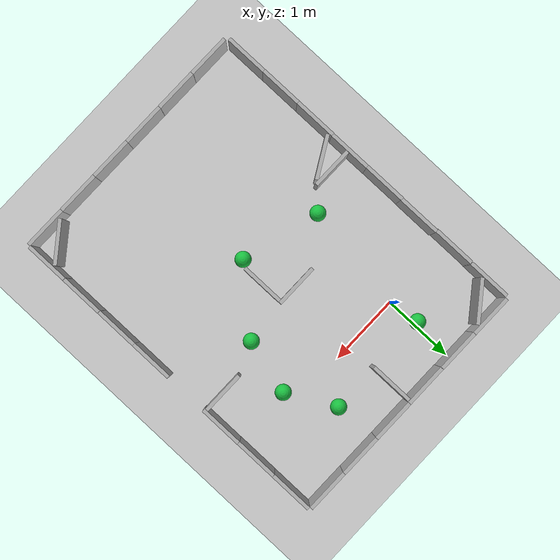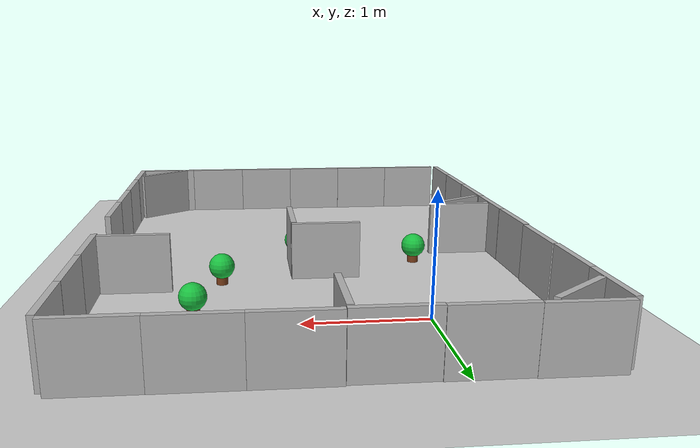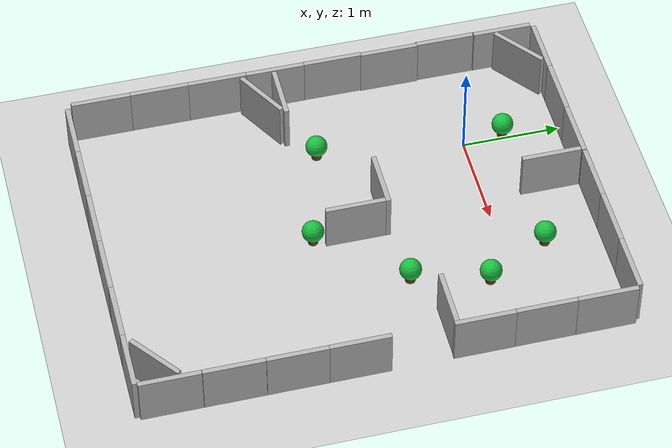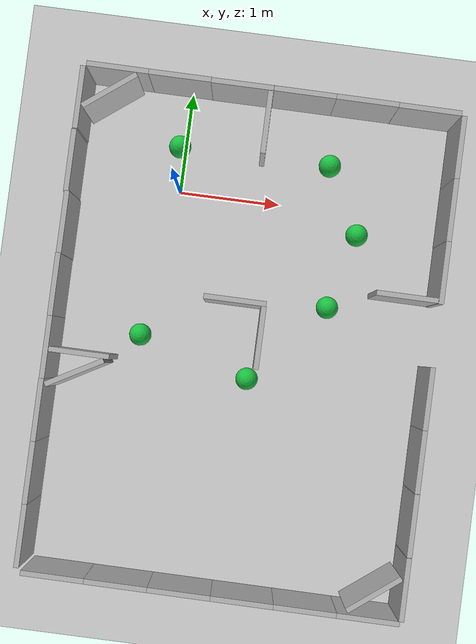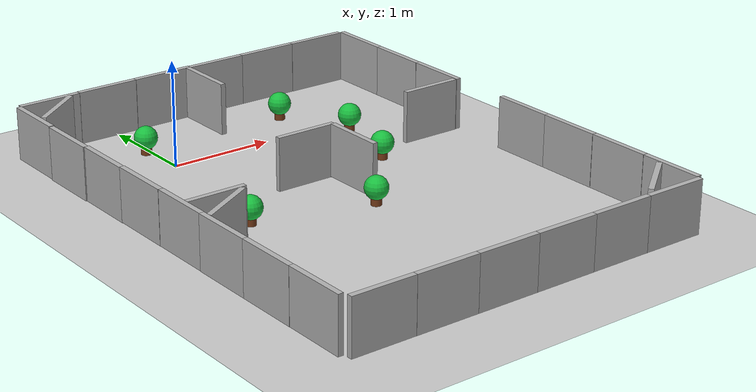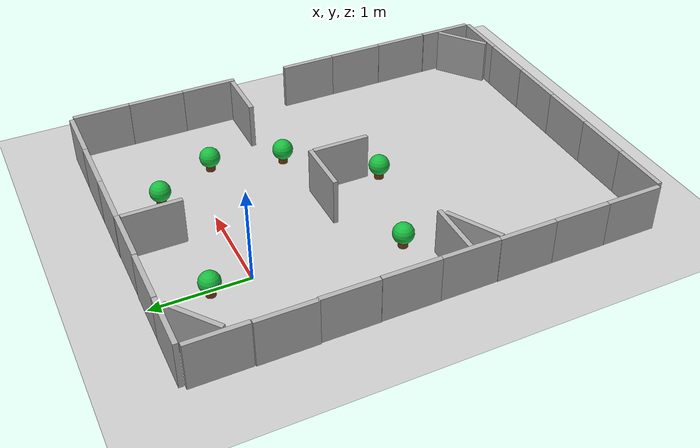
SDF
<sdf version="1.8">
 <world name="default">
  <model name="ground_plane">
   <static>true</static>
   <link name="link">
    <collision name="collision">
     <geometry><plane><normal>0 0 1</normal><size>100 100</size></plane></geometry>
    </collision>
    <visual name="visual">
     <geometry><plane><normal>0 0 1</normal><size>100 100</size></plane></geometry>
     <material>
      <ambient>0.800000012 0.800000012 0.800000012 1</ambient>
      <diffuse>0.800000012 0.800000012 0.800000012 1</diffuse>
      <specular>0.800000012 0.800000012 0.800000012 1</specular>
     </material>
    </visual>
    <inertial>
     <mass>1</mass>
     <inertia><ixx>1</ixx><ixy>0</ixy><ixz>0</ixz><iyy>1</iyy><iyz>0</iyz><izz>1</izz></inertia>
    </inertial>
   </link>
  </model>
  <model name="box">
   <pose>-1.0242099761962891 0.67777901887893677 0.26292604207992554 0 0 0</pose>
   <link name="box_link">
    <inertial>
     <inertia><ixx>0.16666</ixx><ixy>0</ixy><ixz>0</ixz><iyy>0.16666</iyy><iyz>0</iyz><izz>0.16666</izz></inertia>
     <mass>1</mass>
    </inertial>
    <collision name="box_collision">
     <geometry><box><size>0.050000000000000003 0.55 0.5</size></box></geometry>
    </collision>
    <visual name="box_visual">
     <geometry><box><size>0.050000000000000003 0.59999999999999998 0.5</size></box></geometry>
     <material>
      <ambient>0.300000012 0.300000012 0.300000012 1</ambient>
      <diffuse>0.699999988 0.699999988 0.699999988 1</diffuse>
      <specular>1 1 1 1</specular>
     </material>
    </visual>
   </link>
   <static>true</static>
  </model>
  <model name="box_1">
   <pose>-1.03 0.070000000000000007 0.26000000000000001 0 0 0</pose>
   <link name="box_link">
    <inertial>
     <inertia><ixx>0.16666</ixx><ixy>0</ixy><ixz>0</ixz><iyy>0.16666</iyy><iyz>0</iyz><izz>0.16666</izz></inertia>
     <mass>1</mass>
    </inertial>
    <collision name="box_collision">
     <geometry><box><size>0.050000000000000003 0.55 0.5</size></box></geometry>
    </collision>
    <visual name="box_visual">
     <geometry><box><size>0.050000000000000003 0.59999999999999998 0.5</size></box></geometry>
     <material>
      <ambient>0.300000012 0.300000012 0.300000012 1</ambient>
      <diffuse>0.699999988 0.699999988 0.699999988 1</diffuse>
      <specular>1 1 1 1</specular>
     </material>
    </visual>
   </link>
   <static>true</static>
  </model>
  <model name="box_2">
   <pose>-1.02 -0.52000000000000002 0.26000000000000001 0 0 0</pose>
   <link name="box_link">
    <inertial>
     <inertia><ixx>0.16666</ixx><ixy>0</ixy><ixz>0</ixz><iyy>0.16666</iyy><iyz>0</iyz><izz>0.16666</izz></inertia>
     <mass>1</mass>
    </inertial>
    <collision name="box_collision">
     <geometry><box><size>0.050000000000000003 0.55 0.5</size></box></geometry>
    </collision>
    <visual name="box_visual">
     <geometry><box><size>0.050000000000000003 0.59999999999999998 0.5</size></box></geometry>
     <material>
      <ambient>0.300000012 0.300000012 0.300000012 1</ambient>
      <diffuse>0.699999988 0.699999988 0.699999988 1</diffuse>
      <specular>1 1 1 1</specular>
     </material>
    </visual>
   </link>
   <static>true</static>
  </model>
  <model name="box_3">
   <pose>-1.0226199626922607 -1.1138999462127686 0.26708531379699707 0 0 0</pose>
   <link name="box_link">
    <inertial>
     <inertia><ixx>0.16666</ixx><ixy>0</ixy><ixz>0</ixz><iyy>0.16666</iyy><iyz>0</iyz><izz>0.16666</izz></inertia>
     <mass>1</mass>
    </inertial>
    <collision name="box_collision">
     <geometry><box><size>0.050000000000000003 0.55 0.5</size></box></geometry>
    </collision>
    <visual name="box_visual">
     <geometry><box><size>0.050000000000000003 0.59999999999999998 0.5</size></box></geometry>
     <material>
      <ambient>0.300000012 0.300000012 0.300000012 1</ambient>
      <diffuse>0.699999988 0.699999988 0.699999988 1</diffuse>
      <specular>1 1 1 1</specular>
     </material>
    </visual>
   </link>
   <static>true</static>
  </model>
  <model name="box_4">
   <pose>-1.0205800533294678 -1.7115800380706787 0.26702764630317688 0 0 0</pose>
   <link name="box_link">
    <inertial>
     <inertia><ixx>0.16666</ixx><ixy>0</ixy><ixz>0</ixz><iyy>0.16666</iyy><iyz>0</iyz><izz>0.16666</izz></inertia>
     <mass>1</mass>
    </inertial>
    <collision name="box_collision">
     <geometry><box><size>0.050000000000000003 0.55 0.5</size></box></geometry>
    </collision>
    <visual name="box_visual">
     <geometry><box><size>0.050000000000000003 0.59999999999999998 0.5</size></box></geometry>
     <material>
      <ambient>0.300000012 0.300000012 0.300000012 1</ambient>
      <diffuse>0.699999988 0.699999988 0.699999988 1</diffuse>
      <specular>1 1 1 1</specular>
     </material>
    </visual>
   </link>
   <static>true</static>
  </model>
  <model name="box_5">
   <pose>-1.023419976234436 -2.3114299774169922 0.26691371202468872 0 0 0</pose>
   <link name="box_link">
    <inertial>
     <inertia><ixx>0.16666</ixx><ixy>0</ixy><ixz>0</ixz><iyy>0.16666</iyy><iyz>0</iyz><izz>0.16666</izz></inertia>
     <mass>1</mass>
    </inertial>
    <collision name="box_collision">
     <geometry><box><size>0.050000000000000003 0.55 0.5</size></box></geometry>
    </collision>
    <visual name="box_visual">
     <geometry><box><size>0.050000000000000003 0.59999999999999998 0.5</size></box></geometry>
     <material>
      <ambient>0.300000012 0.300000012 0.300000012 1</ambient>
      <diffuse>0.699999988 0.699999988 0.699999988 1</diffuse>
      <specular>1 1 1 1</specular>
     </material>
    </visual>
   </link>
   <static>true</static>
  </model>
  <model name="box_6">
   <pose>-1.0233800411224365 -2.9101500511169434 0.26712024211883545 0 0 0</pose>
   <link name="box_link">
    <inertial>
     <inertia><ixx>0.16666</ixx><ixy>0</ixy><ixz>0</ixz><iyy>0.16666</iyy><iyz>0</iyz><izz>0.16666</izz></inertia>
     <mass>1</mass>
    </inertial>
    <collision name="box_collision">
     <geometry><box><size>0.050000000000000003 0.55 0.5</size></box></geometry>
    </collision>
    <visual name="box_visual">
     <geometry><box><size>0.050000000000000003 0.59999999999999998 0.5</size></box></geometry>
     <material>
      <ambient>0.300000012 0.300000012 0.300000012 1</ambient>
      <diffuse>0.699999988 0.699999988 0.699999988 1</diffuse>
      <specular>1 1 1 1</specular>
     </material>
    </visual>
   </link>
   <static>true</static>
  </model>
  <model name="box_7">
   <pose>-1.0221500396728516 -3.5036098957061768 0.26729947328567505 0 0 0</pose>
   <link name="box_link">
    <inertial>
     <inertia><ixx>0.16666</ixx><ixy>0</ixy><ixz>0</ixz><iyy>0.16666</iyy><iyz>0</iyz><izz>0.16666</izz></inertia>
     <mass>1</mass>
    </inertial>
    <collision name="box_collision">
     <geometry><box><size>0.050000000000000003 0.55 0.5</size></box></geometry>
    </collision>
    <visual name="box_visual">
     <geometry><box><size>0.050000000000000003 0.59999999999999998 0.5</size></box></geometry>
     <material>
      <ambient>0.300000012 0.300000012 0.300000012 1</ambient>
      <diffuse>0.699999988 0.699999988 0.699999988 1</diffuse>
      <specular>1 1 1 1</specular>
     </material>
    </visual>
   </link>
   <static>true</static>
  </model>
  <model name="box_8">
   <pose>-0.69749999046325684 1.0066399574279787 0.25750440359115601 0 0 1.5658000872875657</pose>
   <link name="box_link">
    <inertial>
     <inertia><ixx>0.16666</ixx><ixy>0</ixy><ixz>0</ixz><iyy>0.16666</iyy><iyz>0</iyz><izz>0.16666</izz></inertia>
     <mass>1</mass>
    </inertial>
    <collision name="box_collision">
     <geometry><box><size>0.050000000000000003 0.55 0.5</size></box></geometry>
    </collision>
    <visual name="box_visual">
     <geometry><box><size>0.050000000000000003 0.59999999999999998 0.5</size></box></geometry>
     <material>
      <ambient>0.300000012 0.300000012 0.300000012 1</ambient>
      <diffuse>0.699999988 0.699999988 0.699999988 1</diffuse>
      <specular>1 1 1 1</specular>
     </material>
    </visual>
   </link>
   <static>true</static>
  </model>
  <model name="box_8_1">
   <pose>-0.10089799761772156 1.0029499530792234 0.26086625456809998 0 0 1.56841005300998</pose>
   <link name="box_link">
    <inertial>
     <inertia><ixx>0.16666</ixx><ixy>0</ixy><ixz>0</ixz><iyy>0.16666</iyy><iyz>0</iyz><izz>0.16666</izz></inertia>
     <mass>1</mass>
    </inertial>
    <collision name="box_collision">
     <geometry><box><size>0.050000000000000003 0.55 0.5</size></box></geometry>
    </collision>
    <visual name="box_visual">
     <geometry><box><size>0.050000000000000003 0.59999999999999998 0.5</size></box></geometry>
     <material>
      <ambient>0.300000012 0.300000012 0.300000012 1</ambient>
      <diffuse>0.699999988 0.699999988 0.699999988 1</diffuse>
      <specular>1 1 1 1</specular>
     </material>
    </visual>
   </link>
   <static>true</static>
  </model>
  <model name="box_8_2">
   <pose>0.4999748468399049 0.99842858314514138 0.2626970112323761 0 0 1.5700000841906609</pose>
   <link name="box_link">
    <inertial>
     <inertia><ixx>0.16666</ixx><ixy>0</ixy><ixz>0</ixz><iyy>0.16666</iyy><iyz>0</iyz><izz>0.16666</izz></inertia>
     <mass>1</mass>
    </inertial>
    <collision name="box_collision">
     <geometry><box><size>0.050000000000000003 0.55 0.5</size></box></geometry>
    </collision>
    <visual name="box_visual">
     <geometry><box><size>0.050000000000000003 0.59999999999999998 0.5</size></box></geometry>
     <material>
      <ambient>0.300000012 0.300000012 0.300000012 1</ambient>
      <diffuse>0.699999988 0.699999988 0.699999988 1</diffuse>
      <specular>1 1 1 1</specular>
     </material>
    </visual>
   </link>
   <static>true</static>
  </model>
  <model name="box_8_3">
   <pose>1.1022270375607515 0.99910312174961913 0.25750398635864258 0 0 1.5658000872875657</pose>
   <link name="box_link">
    <inertial>
     <inertia><ixx>0.16666</ixx><ixy>0</ixy><ixz>0</ixz><iyy>0.16666</iyy><iyz>0</iyz><izz>0.16666</izz></inertia>
     <mass>1</mass>
    </inertial>
    <collision name="box_collision">
     <geometry><box><size>0.050000000000000003 0.55 0.5</size></box></geometry>
    </collision>
    <visual name="box_visual">
     <geometry><box><size>0.050000000000000003 0.59999999999999998 0.5</size></box></geometry>
     <material>
      <ambient>0.300000012 0.300000012 0.300000012 1</ambient>
      <diffuse>0.699999988 0.699999988 0.699999988 1</diffuse>
      <specular>1 1 1 1</specular>
     </material>
    </visual>
   </link>
   <static>true</static>
  </model>
  <model name="box_8_4">
   <pose>1.701962914249203 0.99650460313267275 0.25750398635864258 0 0 1.5658000872875657</pose>
   <link name="box_link">
    <inertial>
     <inertia><ixx>0.16666</ixx><ixy>0</ixy><ixz>0</ixz><iyy>0.16666</iyy><iyz>0</iyz><izz>0.16666</izz></inertia>
     <mass>1</mass>
    </inertial>
    <collision name="box_collision">
     <geometry><box><size>0.050000000000000003 0.55 0.5</size></box></geometry>
    </collision>
    <visual name="box_visual">
     <geometry><box><size>0.050000000000000003 0.59999999999999998 0.5</size></box></geometry>
     <material>
      <ambient>0.300000012 0.300000012 0.300000012 1</ambient>
      <diffuse>0.699999988 0.699999988 0.699999988 1</diffuse>
      <specular>1 1 1 1</specular>
     </material>
    </visual>
   </link>
   <static>true</static>
  </model>
  <model name="box_8_5">
   <pose>2.3000763394988408 0.99137905356510148 0.25750398635864258 0 0 1.5658000872875657</pose>
   <link name="box_link">
    <inertial>
     <inertia><ixx>0.16666</ixx><ixy>0</ixy><ixz>0</ixz><iyy>0.16666</iyy><iyz>0</iyz><izz>0.16666</izz></inertia>
     <mass>1</mass>
    </inertial>
    <collision name="box_collision">
     <geometry><box><size>0.050000000000000003 0.55 0.5</size></box></geometry>
    </collision>
    <visual name="box_visual">
     <geometry><box><size>0.050000000000000003 0.59999999999999998 0.5</size></box></geometry>
     <material>
      <ambient>0.300000012 0.300000012 0.300000012 1</ambient>
      <diffuse>0.699999988 0.699999988 0.699999988 1</diffuse>
      <specular>1 1 1 1</specular>
     </material>
    </visual>
   </link>
   <static>true</static>
  </model>
  <model name="box_9">
   <pose>2.626252963941734 0.66552933060747566 0.26292601227760315 0 0 0</pose>
   <link name="box_link">
    <inertial>
     <inertia><ixx>0.16666</ixx><ixy>0</ixy><ixz>0</ixz><iyy>0.16666</iyy><iyz>0</iyz><izz>0.16666</izz></inertia>
     <mass>1</mass>
    </inertial>
    <collision name="box_collision">
     <geometry><box><size>0.050000000000000003 0.55 0.5</size></box></geometry>
    </collision>
    <visual name="box_visual">
     <geometry><box><size>0.050000000000000003 0.59999999999999998 0.5</size></box></geometry>
     <material>
      <ambient>0.300000012 0.300000012 0.300000012 1</ambient>
      <diffuse>0.699999988 0.699999988 0.699999988 1</diffuse>
      <specular>1 1 1 1</specular>
     </material>
    </visual>
   </link>
   <static>true</static>
  </model>
  <model name="box_10">
   <pose>2.625702667551475 0.065195542834084463 0.26292601227760315 0 0 0</pose>
   <link name="box_link">
    <inertial>
     <inertia><ixx>0.16666</ixx><ixy>0</ixy><ixz>0</ixz><iyy>0.16666</iyy><iyz>0</iyz><izz>0.16666</izz></inertia>
     <mass>1</mass>
    </inertial>
    <collision name="box_collision">
     <geometry><box><size>0.050000000000000003 0.55 0.5</size></box></geometry>
    </collision>
    <visual name="box_visual">
     <geometry><box><size>0.050000000000000003 0.59999999999999998 0.5</size></box></geometry>
     <material>
      <ambient>0.300000012 0.300000012 0.300000012 1</ambient>
      <diffuse>0.699999988 0.699999988 0.699999988 1</diffuse>
      <specular>1 1 1 1</specular>
     </material>
    </visual>
   </link>
   <static>true</static>
  </model>
  <model name="box_11">
   <pose>2.6275927926499159 -0.53502727789761817 0.26292601227760315 0 0 0</pose>
   <link name="box_link">
    <inertial>
     <inertia><ixx>0.16666</ixx><ixy>0</ixy><ixz>0</ixz><iyy>0.16666</iyy><iyz>0</iyz><izz>0.16666</izz></inertia>
     <mass>1</mass>
    </inertial>
    <collision name="box_collision">
     <geometry><box><size>0.050000000000000003 0.55 0.5</size></box></geometry>
    </collision>
    <visual name="box_visual">
     <geometry><box><size>0.050000000000000003 0.59999999999999998 0.5</size></box></geometry>
     <material>
      <ambient>0.300000012 0.300000012 0.300000012 1</ambient>
      <diffuse>0.699999988 0.699999988 0.699999988 1</diffuse>
      <specular>1 1 1 1</specular>
     </material>
    </visual>
   </link>
   <static>true</static>
  </model>
  <model name="box_13">
   <pose>2.6267948704934359 -1.7371728259073804 0.26292601227760315 0 0 0</pose>
   <link name="box_link">
    <inertial>
     <inertia><ixx>0.16666</ixx><ixy>0</ixy><ixz>0</ixz><iyy>0.16666</iyy><iyz>0</iyz><izz>0.16666</izz></inertia>
     <mass>1</mass>
    </inertial>
    <collision name="box_collision">
     <geometry><box><size>0.050000000000000003 0.55 0.5</size></box></geometry>
    </collision>
    <visual name="box_visual">
     <geometry><box><size>0.050000000000000003 0.59999999999999998 0.5</size></box></geometry>
     <material>
      <ambient>0.300000012 0.300000012 0.300000012 1</ambient>
      <diffuse>0.699999988 0.699999988 0.699999988 1</diffuse>
      <specular>1 1 1 1</specular>
     </material>
    </visual>
   </link>
   <static>true</static>
  </model>
  <model name="box_14">
   <pose>2.6267614305352369 -2.3366292042299199 0.26292601227760315 0 0 0</pose>
   <link name="box_link">
    <inertial>
     <inertia><ixx>0.16666</ixx><ixy>0</ixy><ixz>0</ixz><iyy>0.16666</iyy><iyz>0</iyz><izz>0.16666</izz></inertia>
     <mass>1</mass>
    </inertial>
    <collision name="box_collision">
     <geometry><box><size>0.050000000000000003 0.55 0.5</size></box></geometry>
    </collision>
    <visual name="box_visual">
     <geometry><box><size>0.050000000000000003 0.59999999999999998 0.5</size></box></geometry>
     <material>
      <ambient>0.300000012 0.300000012 0.300000012 1</ambient>
      <diffuse>0.699999988 0.699999988 0.699999988 1</diffuse>
      <specular>1 1 1 1</specular>
     </material>
    </visual>
   </link>
   <static>true</static>
  </model>
  <model name="box_15">
   <pose>2.6280006269886167 -2.9389073220340531 0.26292601227760315 0 0 0</pose>
   <link name="box_link">
    <inertial>
     <inertia><ixx>0.16666</ixx><ixy>0</ixy><ixz>0</ixz><iyy>0.16666</iyy><iyz>0</iyz><izz>0.16666</izz></inertia>
     <mass>1</mass>
    </inertial>
    <collision name="box_collision">
     <geometry><box><size>0.050000000000000003 0.55 0.5</size></box></geometry>
    </collision>
    <visual name="box_visual">
     <geometry><box><size>0.050000000000000003 0.59999999999999998 0.5</size></box></geometry>
     <material>
      <ambient>0.300000012 0.300000012 0.300000012 1</ambient>
      <diffuse>0.699999988 0.699999988 0.699999988 1</diffuse>
      <specular>1 1 1 1</specular>
     </material>
    </visual>
   </link>
   <static>true</static>
  </model>
  <model name="box_16">
   <pose>2.6274764676781759 -3.5421945732274764 0.26292601227760315 0 0 0</pose>
   <link name="box_link">
    <inertial>
     <inertia><ixx>0.16666</ixx><ixy>0</ixy><ixz>0</ixz><iyy>0.16666</iyy><iyz>0</iyz><izz>0.16666</izz></inertia>
     <mass>1</mass>
    </inertial>
    <collision name="box_collision">
     <geometry><box><size>0.050000000000000003 0.55 0.5</size></box></geometry>
    </collision>
    <visual name="box_visual">
     <geometry><box><size>0.050000000000000003 0.59999999999999998 0.5</size></box></geometry>
     <material>
      <ambient>0.300000012 0.300000012 0.300000012 1</ambient>
      <diffuse>0.699999988 0.699999988 0.699999988 1</diffuse>
      <specular>1 1 1 1</specular>
     </material>
    </visual>
   </link>
   <static>true</static>
  </model>
  <model name="box_8_5_1">
   <pose>2.3170975934162765 -3.8655655792473209 0.25750398635864258 0 0 1.5658000872875657</pose>
   <link name="box_link">
    <inertial>
     <inertia><ixx>0.16666</ixx><ixy>0</ixy><ixz>0</ixz><iyy>0.16666</iyy><iyz>0</iyz><izz>0.16666</izz></inertia>
     <mass>1</mass>
    </inertial>
    <collision name="box_collision">
     <geometry><box><size>0.050000000000000003 0.55 0.5</size></box></geometry>
    </collision>
    <visual name="box_visual">
     <geometry><box><size>0.050000000000000003 0.59999999999999998 0.5</size></box></geometry>
     <material>
      <ambient>0.300000012 0.300000012 0.300000012 1</ambient>
      <diffuse>0.699999988 0.699999988 0.699999988 1</diffuse>
      <specular>1 1 1 1</specular>
     </material>
    </visual>
   </link>
   <static>true</static>
  </model>
  <model name="box_8_5_2">
   <pose>1.7183380653296056 -3.862349183830966 0.25750398635864258 0 0 1.5658000872875657</pose>
   <link name="box_link">
    <inertial>
     <inertia><ixx>0.16666</ixx><ixy>0</ixy><ixz>0</ixz><iyy>0.16666</iyy><iyz>0</iyz><izz>0.16666</izz></inertia>
     <mass>1</mass>
    </inertial>
    <collision name="box_collision">
     <geometry><box><size>0.050000000000000003 0.55 0.5</size></box></geometry>
    </collision>
    <visual name="box_visual">
     <geometry><box><size>0.050000000000000003 0.59999999999999998 0.5</size></box></geometry>
     <material>
      <ambient>0.300000012 0.300000012 0.300000012 1</ambient>
      <diffuse>0.699999988 0.699999988 0.699999988 1</diffuse>
      <specular>1 1 1 1</specular>
     </material>
    </visual>
   </link>
   <static>true</static>
  </model>
  <model name="box_8_5_3">
   <pose>1.1190764522698835 -3.8600206948799998 0.25750398635864258 0 0 1.5658000872875657</pose>
   <link name="box_link">
    <inertial>
     <inertia><ixx>0.16666</ixx><ixy>0</ixy><ixz>0</ixz><iyy>0.16666</iyy><iyz>0</iyz><izz>0.16666</izz></inertia>
     <mass>1</mass>
    </inertial>
    <collision name="box_collision">
     <geometry><box><size>0.050000000000000003 0.55 0.5</size></box></geometry>
    </collision>
    <visual name="box_visual">
     <geometry><box><size>0.050000000000000003 0.59999999999999998 0.5</size></box></geometry>
     <material>
      <ambient>0.300000012 0.300000012 0.300000012 1</ambient>
      <diffuse>0.699999988 0.699999988 0.699999988 1</diffuse>
      <specular>1 1 1 1</specular>
     </material>
    </visual>
   </link>
   <static>true</static>
  </model>
  <model name="box_8_5_4">
   <pose>0.52016775223423839 -3.8568482565905109 0.25750398635864258 0 0 1.5658000872875657</pose>
   <link name="box_link">
    <inertial>
     <inertia><ixx>0.16666</ixx><ixy>0</ixy><ixz>0</ixz><iyy>0.16666</iyy><iyz>0</iyz><izz>0.16666</izz></inertia>
     <mass>1</mass>
    </inertial>
    <collision name="box_collision">
     <geometry><box><size>0.050000000000000003 0.55 0.5</size></box></geometry>
    </collision>
    <visual name="box_visual">
     <geometry><box><size>0.050000000000000003 0.59999999999999998 0.5</size></box></geometry>
     <material>
      <ambient>0.300000012 0.300000012 0.300000012 1</ambient>
      <diffuse>0.699999988 0.699999988 0.699999988 1</diffuse>
      <specular>1 1 1 1</specular>
     </material>
    </visual>
   </link>
   <static>true</static>
  </model>
  <model name="box_8_5_5">
   <pose>-0.080121158882265009 -3.8538894517536315 0.25750398635864258 0 0 1.5658000872875657</pose>
   <link name="box_link">
    <inertial>
     <inertia><ixx>0.16666</ixx><ixy>0</ixy><ixz>0</ixz><iyy>0.16666</iyy><iyz>0</iyz><izz>0.16666</izz></inertia>
     <mass>1</mass>
    </inertial>
    <collision name="box_collision">
     <geometry><box><size>0.050000000000000003 0.55 0.5</size></box></geometry>
    </collision>
    <visual name="box_visual">
     <geometry><box><size>0.050000000000000003 0.59999999999999998 0.5</size></box></geometry>
     <material>
      <ambient>0.300000012 0.300000012 0.300000012 1</ambient>
      <diffuse>0.699999988 0.699999988 0.699999988 1</diffuse>
      <specular>1 1 1 1</specular>
     </material>
    </visual>
   </link>
   <static>true</static>
  </model>
  <model name="box_8_5_6">
   <pose>-0.67984316614260165 -3.8498007437380806 0.25750398635864258 0 0 1.5658000872875657</pose>
   <link name="box_link">
    <inertial>
     <inertia><ixx>0.16666</ixx><ixy>0</ixy><ixz>0</ixz><iyy>0.16666</iyy><iyz>0</iyz><izz>0.16666</izz></inertia>
     <mass>1</mass>
    </inertial>
    <collision name="box_collision">
     <geometry><box><size>0.050000000000000003 0.55 0.5</size></box></geometry>
    </collision>
    <visual name="box_visual">
     <geometry><box><size>0.050000000000000003 0.59999999999999998 0.5</size></box></geometry>
     <material>
      <ambient>0.300000012 0.300000012 0.300000012 1</ambient>
      <diffuse>0.699999988 0.699999988 0.699999988 1</diffuse>
      <specular>1 1 1 1</specular>
     </material>
    </visual>
   </link>
   <static>true</static>
  </model>
  <model name="box_8_5_7">
   <pose>-0.71799231176185963 -1.7295482278429848 0.25750398635864258 0 0 1.5658000872875657</pose>
   <link name="box_link">
    <inertial>
     <inertia><ixx>0.16666</ixx><ixy>0</ixy><ixz>0</ixz><iyy>0.16666</iyy><iyz>0</iyz><izz>0.16666</izz></inertia>
     <mass>1</mass>
    </inertial>
    <collision name="box_collision">
     <geometry><box><size>0.050000000000000003 0.55 0.5</size></box></geometry>
    </collision>
    <visual name="box_visual">
     <geometry><box><size>0.050000000000000003 0.59999999999999998 0.5</size></box></geometry>
     <material>
      <ambient>0.300000012 0.300000012 0.300000012 1</ambient>
      <diffuse>0.699999988 0.699999988 0.699999988 1</diffuse>
      <specular>1 1 1 1</specular>
     </material>
    </visual>
   </link>
   <static>true</static>
  </model>
  <model name="box_8_5_9">
   <pose>2.3106882813119443 -0.80301534855683077 0.25750398635864258 0 0 1.5658000872875657</pose>
   <link name="box_link">
    <inertial>
     <inertia><ixx>0.16666</ixx><ixy>0</ixy><ixz>0</ixz><iyy>0.16666</iyy><iyz>0</iyz><izz>0.16666</izz></inertia>
     <mass>1</mass>
    </inertial>
    <collision name="box_collision">
     <geometry><box><size>0.050000000000000003 0.55 0.5</size></box></geometry>
    </collision>
    <visual name="box_visual">
     <geometry><box><size>0.050000000000000003 0.59999999999999998 0.5</size></box></geometry>
     <material>
      <ambient>0.300000012 0.300000012 0.300000012 1</ambient>
      <diffuse>0.699999988 0.699999988 0.699999988 1</diffuse>
      <specular>1 1 1 1</specular>
     </material>
    </visual>
   </link>
   <static>true</static>
  </model>
  <model name="box_1_1">
   <pose>0.77402352846331013 0.66890409951665486 0.26661500334739685 0 0 0</pose>
   <link name="box_link">
    <inertial>
     <inertia><ixx>0.16666</ixx><ixy>0</ixy><ixz>0</ixz><iyy>0.16666</iyy><iyz>0</iyz><izz>0.16666</izz></inertia>
     <mass>1</mass>
    </inertial>
    <collision name="box_collision">
     <geometry><box><size>0.050000000000000003 0.55 0.5</size></box></geometry>
    </collision>
    <visual name="box_visual">
     <geometry><box><size>0.050000000000000003 0.59999999999999998 0.5</size></box></geometry>
     <material>
      <ambient>0.300000012 0.300000012 0.300000012 1</ambient>
      <diffuse>0.699999988 0.699999988 0.699999988 1</diffuse>
      <specular>1 1 1 1</specular>
     </material>
    </visual>
   </link>
   <static>true</static>
  </model>
  <model name="box_1_2_2">
   <pose>-0.74630128513783545 0.77809146078665803 0.26661500334739685 0 0 -0.9211320022812256</pose>
   <link name="box_link">
    <inertial>
     <inertia><ixx>0.16666</ixx><ixy>0</ixy><ixz>0</ixz><iyy>0.16666</iyy><iyz>0</iyz><izz>0.16666</izz></inertia>
     <mass>1</mass>
    </inertial>
    <collision name="box_collision">
     <geometry><box><size>0.050000000000000003 0.55 0.5</size></box></geometry>
    </collision>
    <visual name="box_visual">
     <geometry><box><size>0.050000000000000003 0.59999999999999998 0.5</size></box></geometry>
     <material>
      <ambient>0.300000012 0.300000012 0.300000012 1</ambient>
      <diffuse>0.699999988 0.699999988 0.699999988 1</diffuse>
      <specular>1 1 1 1</specular>
     </material>
    </visual>
   </link>
   <static>true</static>
  </model>
  <model name="box_1_2_3">
   <pose>2.3426086092275002 -3.6236037284401896 0.26661500334739685 0 0 -0.9211320022812256</pose>
   <link name="box_link">
    <inertial>
     <inertia><ixx>0.16666</ixx><ixy>0</ixy><ixz>0</ixz><iyy>0.16666</iyy><iyz>0</iyz><izz>0.16666</izz></inertia>
     <mass>1</mass>
    </inertial>
    <collision name="box_collision">
     <geometry><box><size>0.050000000000000003 0.55 0.5</size></box></geometry>
    </collision>
    <visual name="box_visual">
     <geometry><box><size>0.050000000000000003 0.59999999999999998 0.5</size></box></geometry>
     <material>
      <ambient>0.300000012 0.300000012 0.300000012 1</ambient>
      <diffuse>0.699999988 0.699999988 0.699999988 1</diffuse>
      <specular>1 1 1 1</specular>
     </material>
    </visual>
   </link>
   <static>true</static>
  </model>
  <model name="box_8_5_8_3">
   <pose>-0.72633250227749258 -1.9181128806837573 0.25750398635864258 0 0 2.0823900577787207</pose>
   <link name="box_link">
    <inertial>
     <inertia><ixx>0.16666</ixx><ixy>0</ixy><ixz>0</ixz><iyy>0.16666</iyy><iyz>0</iyz><izz>0.16666</izz></inertia>
     <mass>1</mass>
    </inertial>
    <collision name="box_collision">
     <geometry><box><size>0.050000000000000003 0.55 0.5</size></box></geometry>
    </collision>
    <visual name="box_visual">
     <geometry><box><size>0.050000000000000003 0.59999999999999998 0.5</size></box></geometry>
     <material>
      <ambient>0.300000012 0.300000012 0.300000012 1</ambient>
      <diffuse>0.699999988 0.699999988 0.699999988 1</diffuse>
      <specular>1 1 1 1</specular>
     </material>
    </visual>
   </link>
   <static>true</static>
  </model>
  <model name="box_1_1_1">
   <pose>0.97109466823778412 -1.3696296970979935 0.26661500334739685 0 0 0</pose>
   <link name="box_link">
    <inertial>
     <inertia><ixx>0.16666</ixx><ixy>0</ixy><ixz>0</ixz><iyy>0.16666</iyy><iyz>0</iyz><izz>0.16666</izz></inertia>
     <mass>1</mass>
    </inertial>
    <collision name="box_collision">
     <geometry><box><size>0.050000000000000003 0.55 0.5</size></box></geometry>
    </collision>
    <visual name="box_visual">
     <geometry><box><size>0.050000000000000003 0.59999999999999998 0.5</size></box></geometry>
     <material>
      <ambient>0.300000012 0.300000012 0.300000012 1</ambient>
      <diffuse>0.699999988 0.699999988 0.699999988 1</diffuse>
      <specular>1 1 1 1</specular>
     </material>
    </visual>
   </link>
   <static>true</static>
  </model>
  <model name="box_8_1_1">
   <pose>0.69148297125501235 -1.0442157666892553 0.26086598634719849 0 0 1.56841005300998</pose>
   <link name="box_link">
    <inertial>
     <inertia><ixx>0.16666</ixx><ixy>0</ixy><ixz>0</ixz><iyy>0.16666</iyy><iyz>0</iyz><izz>0.16666</izz></inertia>
     <mass>1</mass>
    </inertial>
    <collision name="box_collision">
     <geometry><box><size>0.050000000000000003 0.55 0.5</size></box></geometry>
    </collision>
    <visual name="box_visual">
     <geometry><box><size>0.050000000000000003 0.59999999999999998 0.5</size></box></geometry>
     <material>
      <ambient>0.300000012 0.300000012 0.300000012 1</ambient>
      <diffuse>0.699999988 0.699999988 0.699999988 1</diffuse>
      <specular>1 1 1 1</specular>
     </material>
    </visual>
   </link>
   <static>true</static>
  </model>
  <model name="plant_a">
   <pose>-0.05 0.42 0 0 0 0</pose>
   <static>true</static>
   <link name="plant_link">
    <visual name="pot_visual">
     <pose>0 0 0.035 0 0 0</pose>
     <geometry><cylinder><radius>0.05</radius><length>0.07</length></cylinder></geometry>
     <material><ambient>0.36 0.18 0.08 1</ambient><diffuse>0.48 0.24 0.10 1</diffuse></material>
    </visual>
    <visual name="leaf_visual">
     <pose>0 0 0.16 0 0 0</pose>
     <geometry><sphere><radius>0.11</radius></sphere></geometry>
     <material><ambient>0.04 0.42 0.13 1</ambient><diffuse>0.10 0.75 0.25 1</diffuse></material>
    </visual>
   </link>
  </model>
  <model name="plant_b">
   <pose>1.45 0.42 0 0 0 0</pose>
   <static>true</static>
   <link name="plant_link">
    <visual name="pot_visual">
     <pose>0 0 0.035 0 0 0</pose>
     <geometry><cylinder><radius>0.05</radius><length>0.07</length></cylinder></geometry>
     <material><ambient>0.36 0.18 0.08 1</ambient><diffuse>0.48 0.24 0.10 1</diffuse></material>
    </visual>
    <visual name="leaf_visual">
     <pose>0 0 0.16 0 0 0</pose>
     <geometry><sphere><radius>0.11</radius></sphere></geometry>
     <material><ambient>0.04 0.42 0.13 1</ambient><diffuse>0.10 0.75 0.25 1</diffuse></material>
    </visual>
   </link>
  </model>
  <model name="plant_c">
   <pose>1.80 -0.23 0 0 0 0</pose>
   <static>true</static>
   <link name="plant_link">
    <visual name="pot_visual">
     <pose>0 0 0.035 0 0 0</pose>
     <geometry><cylinder><radius>0.05</radius><length>0.07</length></cylinder></geometry>
     <material><ambient>0.36 0.18 0.08 1</ambient><diffuse>0.48 0.24 0.10 1</diffuse></material>
    </visual>
    <visual name="leaf_visual">
     <pose>0 0 0.16 0 0 0</pose>
     <geometry><sphere><radius>0.11</radius></sphere></geometry>
     <material><ambient>0.04 0.42 0.13 1</ambient><diffuse>0.10 0.75 0.25 1</diffuse></material>
    </visual>
   </link>
  </model>
  <model name="plant_d">
   <pose>1.60 -0.98 0 0 0 0</pose>
   <static>true</static>
   <link name="plant_link">
    <visual name="pot_visual">
     <pose>0 0 0.035 0 0 0</pose>
     <geometry><cylinder><radius>0.05</radius><length>0.07</length></cylinder></geometry>
     <material><ambient>0.36 0.18 0.08 1</ambient><diffuse>0.48 0.24 0.10 1</diffuse></material>
    </visual>
    <visual name="leaf_visual">
     <pose>0 0 0.16 0 0 0</pose>
     <geometry><sphere><radius>0.11</radius></sphere></geometry>
     <material><ambient>0.04 0.42 0.13 1</ambient><diffuse>0.10 0.75 0.25 1</diffuse></material>
    </visual>
   </link>
  </model>
  <model name="plant_e">
   <pose>0.90 -1.78 0 0 0 0</pose>
   <static>true</static>
   <link name="plant_link">
    <visual name="pot_visual">
     <pose>0 0 0.035 0 0 0</pose>
     <geometry><cylinder><radius>0.05</radius><length>0.07</length></cylinder></geometry>
     <material><ambient>0.36 0.18 0.08 1</ambient><diffuse>0.48 0.24 0.10 1</diffuse></material>
    </visual>
    <visual name="leaf_visual">
     <pose>0 0 0.16 0 0 0</pose>
     <geometry><sphere><radius>0.11</radius></sphere></geometry>
     <material><ambient>0.04 0.42 0.13 1</ambient><diffuse>0.10 0.75 0.25 1</diffuse></material>
    </visual>
   </link>
  </model>
  <model name="plant_f">
   <pose>-0.20 -1.48 0 0 0 0</pose>
   <static>true</static>
   <link name="plant_link">
    <visual name="pot_visual">
     <pose>0 0 0.035 0 0 0</pose>
     <geometry><cylinder><radius>0.05</radius><length>0.07</length></cylinder></geometry>
     <material><ambient>0.36 0.18 0.08 1</ambient><diffuse>0.48 0.24 0.10 1</diffuse></material>
    </visual>
    <visual name="leaf_visual">
     <pose>0 0 0.16 0 0 0</pose>
     <geometry><sphere><radius>0.11</radius></sphere></geometry>
     <material><ambient>0.04 0.42 0.13 1</ambient><diffuse>0.10 0.75 0.25 1</diffuse></material>
    </visual>
   </link>
  </model>
 </world>
</sdf>
